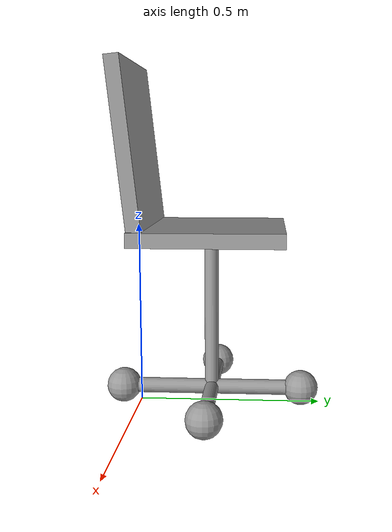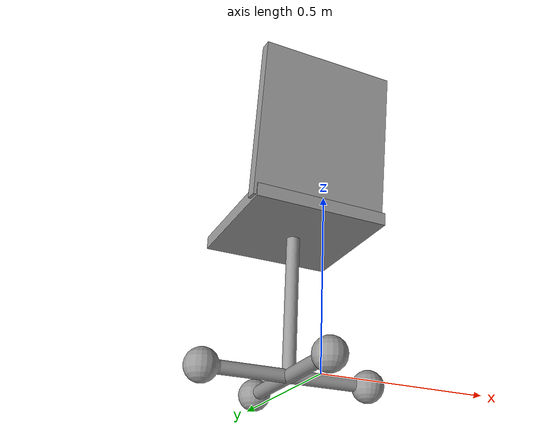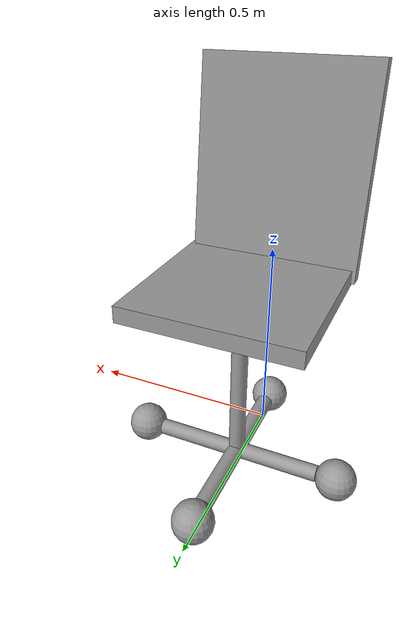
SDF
<?xml version='1.0'?>
<sdf version='1.6'>
  <model name='Sedia'>
    <link name='link'>
      <inertial>
        <mass>1</mass>
        <inertia>
          <ixx>0.1</ixx>
          <ixy>0</ixy>
          <ixz>0</ixz>
          <iyy>0.1</iyy>
          <iyz>0</iyz>
          <izz>0.1</izz>
        </inertia>
        <pose frame=''>0 -0.05 0 0 -0 0</pose>
      </inertial>
      <self_collide>0</self_collide>
      <enable_wind>0</enable_wind>
      <kinematic>0</kinematic>
      <pose frame=''>0 -0.05 0.04 0 -0 0</pose>
      <gravity>1</gravity>
      <visual name='visual'>
        <geometry>
          <sphere>
            <radius>0.0479725</radius>
          </sphere>
        </geometry>
        <material>
          <script>
            <name>Gazebo/Grey</name>
            <uri>file://media/materials/scripts/gazebo.material</uri>
          </script>
          <shader type='vertex'>
            <normal_map>__default__</normal_map>
          </shader>
          <ambient>0.3 0.3 0.3 1</ambient>
          <diffuse>0.7 0.7 0.7 1</diffuse>
          <specular>0.01 0.01 0.01 1</specular>
          <emissive>0 0 0 1</emissive>
        </material>
        <pose frame=''>0 0 0 0 -0 0</pose>
        <transparency>0</transparency>
        <cast_shadows>1</cast_shadows>
      </visual>
      <collision name='collision'>
        <laser_retro>0</laser_retro>
        <max_contacts>10</max_contacts>
        <pose frame=''>0 0 0 0 -0 0</pose>
        <geometry>
          <sphere>
            <radius>0.047973</radius>
          </sphere>
        </geometry>
        <surface>
          <friction>
            <ode>
              <mu>1</mu>
              <mu2>1</mu2>
              <fdir1>0 0 0</fdir1>
              <slip1>0</slip1>
              <slip2>0</slip2>
            </ode>
            <torsional>
              <coefficient>1</coefficient>
              <patch_radius>0</patch_radius>
              <surface_radius>0</surface_radius>
              <use_patch_radius>1</use_patch_radius>
              <ode>
                <slip>0</slip>
              </ode>
            </torsional>
          </friction>
          <bounce>
            <restitution_coefficient>0</restitution_coefficient>
            <threshold>1e+06</threshold>
          </bounce>
          <contact>
            <collide_without_contact>0</collide_without_contact>
            <collide_without_contact_bitmask>1</collide_without_contact_bitmask>
            <collide_bitmask>1</collide_bitmask>
            <ode>
              <soft_cfm>0</soft_cfm>
              <soft_erp>0.2</soft_erp>
              <kp>1e+13</kp>
              <kd>1</kd>
              <max_vel>0.01</max_vel>
              <min_depth>0</min_depth>
            </ode>
            <bullet>
              <split_impulse>1</split_impulse>
              <split_impulse_penetration_threshold>-0.01</split_impulse_penetration_threshold>
              <soft_cfm>0</soft_cfm>
              <soft_erp>0.2</soft_erp>
              <kp>1e+13</kp>
              <kd>1</kd>
            </bullet>
          </contact>
        </surface>
      </collision>
    </link>
    <link name='link_0'>
      <inertial>
        <mass>0.000595181</mass>
        <inertia>
          <ixx>8.34662e-06</ixx>
          <ixy>0</ixy>
          <ixz>0</ixz>
          <iyy>8.34662e-06</iyy>
          <iyz>0</iyz>
          <izz>1.11586e-07</izz>
        </inertia>
        <pose frame=''>0 0 0 0 -0 0</pose>
      </inertial>
      <pose frame=''>-0 0.2 0.2494 0 -0 0</pose>
      <gravity>1</gravity>
      <self_collide>0</self_collide>
      <kinematic>0</kinematic>
      <enable_wind>0</enable_wind>
      <visual name='visual'>
        <pose frame=''>0 0 0 0 -0 0</pose>
        <geometry>
          <cylinder>
            <radius>0.0193636</radius>
            <length>0.408851</length>
          </cylinder>
        </geometry>
        <material>
          <lighting>1</lighting>
          <script>
            <uri>file://media/materials/scripts/gazebo.material</uri>
            <name>Gazebo/Grey</name>
          </script>
          <shader type='vertex'>
            <normal_map>__default__</normal_map>
          </shader>
          <ambient>0.3 0.3 0.3 1</ambient>
          <diffuse>0.7 0.7 0.7 1</diffuse>
          <specular>0.01 0.01 0.01 1</specular>
          <emissive>0 0 0 1</emissive>
        </material>
        <transparency>0</transparency>
        <cast_shadows>1</cast_shadows>
      </visual>
      <collision name='collision'>
        <laser_retro>0</laser_retro>
        <max_contacts>10</max_contacts>
        <pose frame=''>0 0 0 0 -0 0</pose>
        <geometry>
          <cylinder>
            <radius>0.019364</radius>
            <length>0.408851</length>
          </cylinder>
        </geometry>
        <surface>
          <friction>
            <ode>
              <mu>1</mu>
              <mu2>1</mu2>
              <fdir1>0 0 0</fdir1>
              <slip1>0</slip1>
              <slip2>0</slip2>
            </ode>
            <torsional>
              <coefficient>1</coefficient>
              <patch_radius>0</patch_radius>
              <surface_radius>0</surface_radius>
              <use_patch_radius>1</use_patch_radius>
              <ode>
                <slip>0</slip>
              </ode>
            </torsional>
          </friction>
          <bounce>
            <restitution_coefficient>0</restitution_coefficient>
            <threshold>1e+06</threshold>
          </bounce>
          <contact>
            <collide_without_contact>0</collide_without_contact>
            <collide_without_contact_bitmask>1</collide_without_contact_bitmask>
            <collide_bitmask>1</collide_bitmask>
            <ode>
              <soft_cfm>0</soft_cfm>
              <soft_erp>0.2</soft_erp>
              <kp>1e+13</kp>
              <kd>1</kd>
              <max_vel>0.01</max_vel>
              <min_depth>0</min_depth>
            </ode>
            <bullet>
              <split_impulse>1</split_impulse>
              <split_impulse_penetration_threshold>-0.01</split_impulse_penetration_threshold>
              <soft_cfm>0</soft_cfm>
              <soft_erp>0.2</soft_erp>
              <kp>1e+13</kp>
              <kd>1</kd>
            </bullet>
          </contact>
        </surface>
      </collision>
    </link>
    <link name='link_0_clone'>
      <inertial>
        <mass>0.000698061</mass>
        <inertia>
          <ixx>1.02332e-05</ixx>
          <ixy>0</ixy>
          <ixz>0</ixz>
          <iyy>1.02332e-05</iyy>
          <iyz>0</iyz>
          <izz>1.50251e-07</izz>
        </inertia>
        <pose frame=''>0 0 0 0 -0 0</pose>
      </inertial>
      <pose frame=''>0 0.2 0.04 -1.571 -0 0</pose>
      <gravity>1</gravity>
      <self_collide>0</self_collide>
      <kinematic>0</kinematic>
      <enable_wind>0</enable_wind>
      <visual name='visual'>
        <pose frame=''>0 0 0 0 -0 0</pose>
        <geometry>
          <cylinder>
            <radius>0.0207471</radius>
            <length>0.417878</length>
          </cylinder>
        </geometry>
        <material>
          <lighting>1</lighting>
          <script>
            <uri>file://media/materials/scripts/gazebo.material</uri>
            <name>Gazebo/Grey</name>
          </script>
          <shader type='vertex'>
            <normal_map>__default__</normal_map>
          </shader>
          <ambient>0.3 0.3 0.3 1</ambient>
          <diffuse>0.7 0.7 0.7 1</diffuse>
          <specular>0.01 0.01 0.01 1</specular>
          <emissive>0 0 0 1</emissive>
        </material>
        <transparency>0</transparency>
        <cast_shadows>1</cast_shadows>
      </visual>
      <collision name='collision'>
        <laser_retro>0</laser_retro>
        <max_contacts>10</max_contacts>
        <pose frame=''>0 0 0 0 -0 0</pose>
        <geometry>
          <cylinder>
            <radius>0.020748</radius>
            <length>0.417878</length>
          </cylinder>
        </geometry>
        <surface>
          <friction>
            <ode>
              <mu>1</mu>
              <mu2>1</mu2>
              <fdir1>0 0 0</fdir1>
              <slip1>0</slip1>
              <slip2>0</slip2>
            </ode>
            <torsional>
              <coefficient>1</coefficient>
              <patch_radius>0</patch_radius>
              <surface_radius>0</surface_radius>
              <use_patch_radius>1</use_patch_radius>
              <ode>
                <slip>0</slip>
              </ode>
            </torsional>
          </friction>
          <bounce>
            <restitution_coefficient>0</restitution_coefficient>
            <threshold>1e+06</threshold>
          </bounce>
          <contact>
            <collide_without_contact>0</collide_without_contact>
            <collide_without_contact_bitmask>1</collide_without_contact_bitmask>
            <collide_bitmask>1</collide_bitmask>
            <ode>
              <soft_cfm>0</soft_cfm>
              <soft_erp>0.2</soft_erp>
              <kp>1e+13</kp>
              <kd>1</kd>
              <max_vel>0.01</max_vel>
              <min_depth>0</min_depth>
            </ode>
            <bullet>
              <split_impulse>1</split_impulse>
              <split_impulse_penetration_threshold>-0.01</split_impulse_penetration_threshold>
              <soft_cfm>0</soft_cfm>
              <soft_erp>0.2</soft_erp>
              <kp>1e+13</kp>
              <kd>1</kd>
            </bullet>
          </contact>
        </surface>
      </collision>
    </link>
    <link name='link_0_clone_0'>
      <inertial>
        <mass>0.00059327</mass>
        <inertia>
          <ixx>8.26633e-06</ixx>
          <ixy>0</ixy>
          <ixz>0</ixz>
          <iyy>8.26633e-06</iyy>
          <iyz>0</iyz>
          <izz>1.11228e-07</izz>
        </inertia>
        <pose frame=''>0 0 0 0 -0 0</pose>
      </inertial>
      <pose frame=''>0 0.2 0.04 0 -1.57059 0</pose>
      <gravity>1</gravity>
      <self_collide>0</self_collide>
      <kinematic>0</kinematic>
      <enable_wind>0</enable_wind>
      <visual name='visual'>
        <pose frame=''>0 0 0 0 -0 0</pose>
        <geometry>
          <cylinder>
            <radius>0.0193636</radius>
            <length>0.407525</length>
          </cylinder>
        </geometry>
        <material>
          <lighting>1</lighting>
          <script>
            <uri>file://media/materials/scripts/gazebo.material</uri>
            <name>Gazebo/Grey</name>
          </script>
          <shader type='vertex'>
            <normal_map>__default__</normal_map>
          </shader>
          <ambient>0.3 0.3 0.3 1</ambient>
          <diffuse>0.7 0.7 0.7 1</diffuse>
          <specular>0.01 0.01 0.01 1</specular>
          <emissive>0 0 0 1</emissive>
        </material>
        <transparency>0</transparency>
        <cast_shadows>1</cast_shadows>
      </visual>
      <collision name='collision'>
        <laser_retro>0</laser_retro>
        <max_contacts>10</max_contacts>
        <pose frame=''>0 0 0 0 -0 0</pose>
        <geometry>
          <cylinder>
            <radius>0.019364</radius>
            <length>0.407525</length>
          </cylinder>
        </geometry>
        <surface>
          <friction>
            <ode>
              <mu>1</mu>
              <mu2>1</mu2>
              <fdir1>0 0 0</fdir1>
              <slip1>0</slip1>
              <slip2>0</slip2>
            </ode>
            <torsional>
              <coefficient>1</coefficient>
              <patch_radius>0</patch_radius>
              <surface_radius>0</surface_radius>
              <use_patch_radius>1</use_patch_radius>
              <ode>
                <slip>0</slip>
              </ode>
            </torsional>
          </friction>
          <bounce>
            <restitution_coefficient>0</restitution_coefficient>
            <threshold>1e+06</threshold>
          </bounce>
          <contact>
            <collide_without_contact>0</collide_without_contact>
            <collide_without_contact_bitmask>1</collide_without_contact_bitmask>
            <collide_bitmask>1</collide_bitmask>
            <ode>
              <soft_cfm>0</soft_cfm>
              <soft_erp>0.2</soft_erp>
              <kp>1e+13</kp>
              <kd>1</kd>
              <max_vel>0.01</max_vel>
              <min_depth>0</min_depth>
            </ode>
            <bullet>
              <split_impulse>1</split_impulse>
              <split_impulse_penetration_threshold>-0.01</split_impulse_penetration_threshold>
              <soft_cfm>0</soft_cfm>
              <soft_erp>0.2</soft_erp>
              <kp>1e+13</kp>
              <kd>1</kd>
            </bullet>
          </contact>
        </surface>
      </collision>
    </link>
    <link name='link_1'>
      <inertial>
        <mass>0.00616304</mass>
        <inertia>
          <ixx>8.379e-05</ixx>
          <ixy>0</ixy>
          <ixz>0</ixz>
          <iyy>8.148e-05</iyy>
          <iyz>0</iyz>
          <izz>0.00016374</izz>
        </inertia>
        <pose frame=''>0 0 0 0 -0 0</pose>
      </inertial>
      <pose frame=''>-0 0.2 0.48 0 -0 0</pose>
      <gravity>1</gravity>
      <self_collide>0</self_collide>
      <kinematic>0</kinematic>
      <enable_wind>0</enable_wind>
      <visual name='visual'>
        <pose frame=''>0 0 0 0 -0 0</pose>
        <geometry>
          <box>
            <size>0.396445 0.402068 0.038566</size>
          </box>
        </geometry>
        <material>
          <lighting>1</lighting>
          <script>
            <uri>file://media/materials/scripts/gazebo.material</uri>
            <name>Gazebo/Grey</name>
          </script>
          <shader type='vertex'>
            <normal_map>__default__</normal_map>
          </shader>
          <ambient>0.3 0.3 0.3 1</ambient>
          <diffuse>0.7 0.7 0.7 1</diffuse>
          <specular>0.01 0.01 0.01 1</specular>
          <emissive>0 0 0 1</emissive>
        </material>
        <transparency>0</transparency>
        <cast_shadows>1</cast_shadows>
      </visual>
      <collision name='collision'>
        <laser_retro>0</laser_retro>
        <max_contacts>10</max_contacts>
        <pose frame=''>0 0 0 0 -0 0</pose>
        <geometry>
          <box>
            <size>0.396445 0.402068 0.038566</size>
          </box>
        </geometry>
        <surface>
          <friction>
            <ode>
              <mu>1</mu>
              <mu2>1</mu2>
              <fdir1>0 0 0</fdir1>
              <slip1>0</slip1>
              <slip2>0</slip2>
            </ode>
            <torsional>
              <coefficient>1</coefficient>
              <patch_radius>0</patch_radius>
              <surface_radius>0</surface_radius>
              <use_patch_radius>1</use_patch_radius>
              <ode>
                <slip>0</slip>
              </ode>
            </torsional>
          </friction>
          <bounce>
            <restitution_coefficient>0</restitution_coefficient>
            <threshold>1e+06</threshold>
          </bounce>
          <contact>
            <collide_without_contact>0</collide_without_contact>
            <collide_without_contact_bitmask>1</collide_without_contact_bitmask>
            <collide_bitmask>1</collide_bitmask>
            <ode>
              <soft_cfm>0</soft_cfm>
              <soft_erp>0.2</soft_erp>
              <kp>1e+13</kp>
              <kd>1</kd>
              <max_vel>0.01</max_vel>
              <min_depth>0</min_depth>
            </ode>
            <bullet>
              <split_impulse>1</split_impulse>
              <split_impulse_penetration_threshold>-0.01</split_impulse_penetration_threshold>
              <soft_cfm>0</soft_cfm>
              <soft_erp>0.2</soft_erp>
              <kp>1e+13</kp>
              <kd>1</kd>
            </bullet>
          </contact>
        </surface>
      </collision>
    </link>
    <link name='link_1_clone'>
      <inertial>
        <mass>0.0072018</mass>
        <inertia>
          <ixx>0.000133376</ixx>
          <ixy>0</ixy>
          <ixz>0</ixz>
          <iyy>9.52174e-05</iyy>
          <iyz>0</iyz>
          <izz>0.000226808</izz>
        </inertia>
        <pose frame=''>0 0 0 0 -0 0</pose>
      </inertial>
      <pose frame=''>-0.008803 -0.002064 0.701044 1.67698 -0 0</pose>
      <gravity>1</gravity>
      <self_collide>0</self_collide>
      <kinematic>0</kinematic>
      <enable_wind>0</enable_wind>
      <visual name='visual'>
        <pose frame=''>0 0 0 0 -0 0</pose>
        <geometry>
          <box>
            <size>0.396445 0.46984 0.038566</size>
          </box>
        </geometry>
        <material>
          <lighting>1</lighting>
          <script>
            <uri>file://media/materials/scripts/gazebo.material</uri>
            <name>Gazebo/Grey</name>
          </script>
          <shader type='vertex'>
            <normal_map>__default__</normal_map>
          </shader>
          <ambient>0.3 0.3 0.3 1</ambient>
          <diffuse>0.7 0.7 0.7 1</diffuse>
          <specular>0.01 0.01 0.01 1</specular>
          <emissive>0 0 0 1</emissive>
        </material>
        <transparency>0</transparency>
        <cast_shadows>1</cast_shadows>
      </visual>
      <collision name='collision'>
        <laser_retro>0</laser_retro>
        <max_contacts>10</max_contacts>
        <pose frame=''>0 0 0 0 -0 0</pose>
        <geometry>
          <box>
            <size>0.396445 0.46984 0.038566</size>
          </box>
        </geometry>
        <surface>
          <friction>
            <ode>
              <mu>1</mu>
              <mu2>1</mu2>
              <fdir1>0 0 0</fdir1>
              <slip1>0</slip1>
              <slip2>0</slip2>
            </ode>
            <torsional>
              <coefficient>1</coefficient>
              <patch_radius>0</patch_radius>
              <surface_radius>0</surface_radius>
              <use_patch_radius>1</use_patch_radius>
              <ode>
                <slip>0</slip>
              </ode>
            </torsional>
          </friction>
          <bounce>
            <restitution_coefficient>0</restitution_coefficient>
            <threshold>1e+06</threshold>
          </bounce>
          <contact>
            <collide_without_contact>0</collide_without_contact>
            <collide_without_contact_bitmask>1</collide_without_contact_bitmask>
            <collide_bitmask>1</collide_bitmask>
            <ode>
              <soft_cfm>0</soft_cfm>
              <soft_erp>0.2</soft_erp>
              <kp>1e+13</kp>
              <kd>1</kd>
              <max_vel>0.01</max_vel>
              <min_depth>0</min_depth>
            </ode>
            <bullet>
              <split_impulse>1</split_impulse>
              <split_impulse_penetration_threshold>-0.01</split_impulse_penetration_threshold>
              <soft_cfm>0</soft_cfm>
              <soft_erp>0.2</soft_erp>
              <kp>1e+13</kp>
              <kd>1</kd>
            </bullet>
          </contact>
        </surface>
      </collision>
    </link>
    <link name='link_clone'>
      <inertial>
        <mass>1</mass>
        <inertia>
          <ixx>0.1</ixx>
          <ixy>0</ixy>
          <ixz>0</ixz>
          <iyy>0.1</iyy>
          <iyz>0</iyz>
          <izz>0.1</izz>
        </inertia>
        <pose frame=''>0 0 0.04 0 -0 0</pose>
      </inertial>
      <self_collide>0</self_collide>
      <enable_wind>0</enable_wind>
      <kinematic>0</kinematic>
      <pose frame=''>0.25 0.2 0.04 0 -0 0</pose>
      <gravity>1</gravity>
      <visual name='visual'>
        <geometry>
          <sphere>
            <radius>0.0479725</radius>
          </sphere>
        </geometry>
        <material>
          <script>
            <name>Gazebo/Grey</name>
            <uri>file://media/materials/scripts/gazebo.material</uri>
          </script>
          <shader type='vertex'>
            <normal_map>__default__</normal_map>
          </shader>
          <ambient>0.3 0.3 0.3 1</ambient>
          <diffuse>0.7 0.7 0.7 1</diffuse>
          <specular>0.01 0.01 0.01 1</specular>
          <emissive>0 0 0 1</emissive>
        </material>
        <pose frame=''>0 0 0 0 -0 0</pose>
        <transparency>0</transparency>
        <cast_shadows>1</cast_shadows>
      </visual>
      <collision name='collision'>
        <laser_retro>0</laser_retro>
        <max_contacts>10</max_contacts>
        <pose frame=''>0 0 0 0 -0 0</pose>
        <geometry>
          <sphere>
            <radius>0.047973</radius>
          </sphere>
        </geometry>
        <surface>
          <friction>
            <ode>
              <mu>1</mu>
              <mu2>1</mu2>
              <fdir1>0 0 0</fdir1>
              <slip1>0</slip1>
              <slip2>0</slip2>
            </ode>
            <torsional>
              <coefficient>1</coefficient>
              <patch_radius>0</patch_radius>
              <surface_radius>0</surface_radius>
              <use_patch_radius>1</use_patch_radius>
              <ode>
                <slip>0</slip>
              </ode>
            </torsional>
          </friction>
          <bounce>
            <restitution_coefficient>0</restitution_coefficient>
            <threshold>1e+06</threshold>
          </bounce>
          <contact>
            <collide_without_contact>0</collide_without_contact>
            <collide_without_contact_bitmask>1</collide_without_contact_bitmask>
            <collide_bitmask>1</collide_bitmask>
            <ode>
              <soft_cfm>0</soft_cfm>
              <soft_erp>0.2</soft_erp>
              <kp>1e+13</kp>
              <kd>1</kd>
              <max_vel>0.01</max_vel>
              <min_depth>0</min_depth>
            </ode>
            <bullet>
              <split_impulse>1</split_impulse>
              <split_impulse_penetration_threshold>-0.01</split_impulse_penetration_threshold>
              <soft_cfm>0</soft_cfm>
              <soft_erp>0.2</soft_erp>
              <kp>1e+13</kp>
              <kd>1</kd>
            </bullet>
          </contact>
        </surface>
      </collision>
    </link>
    <link name='link_clone_0'>
      <inertial>
        <mass>1</mass>
        <inertia>
          <ixx>0.1</ixx>
          <ixy>0</ixy>
          <ixz>0</ixz>
          <iyy>0.1</iyy>
          <iyz>0</iyz>
          <izz>0.1</izz>
        </inertia>
        <pose frame=''>0 0 0 0 -0 0</pose>
      </inertial>
      <self_collide>0</self_collide>
      <enable_wind>0</enable_wind>
      <kinematic>0</kinematic>
      <pose frame=''>-0 0.45 0.04 0 -0 0</pose>
      <gravity>1</gravity>
      <visual name='visual'>
        <geometry>
          <sphere>
            <radius>0.0479725</radius>
          </sphere>
        </geometry>
        <material>
          <script>
            <name>Gazebo/Grey</name>
            <uri>file://media/materials/scripts/gazebo.material</uri>
          </script>
          <shader type='vertex'>
            <normal_map>__default__</normal_map>
          </shader>
          <ambient>0.3 0.3 0.3 1</ambient>
          <diffuse>0.7 0.7 0.7 1</diffuse>
          <specular>0.01 0.01 0.01 1</specular>
          <emissive>0 0 0 1</emissive>
        </material>
        <pose frame=''>0 0 0 0 -0 0</pose>
        <transparency>0</transparency>
        <cast_shadows>1</cast_shadows>
      </visual>
      <collision name='collision'>
        <laser_retro>0</laser_retro>
        <max_contacts>10</max_contacts>
        <pose frame=''>0 0 0 0 -0 0</pose>
        <geometry>
          <sphere>
            <radius>0.047973</radius>
          </sphere>
        </geometry>
        <surface>
          <friction>
            <ode>
              <mu>1</mu>
              <mu2>1</mu2>
              <fdir1>0 0 0</fdir1>
              <slip1>0</slip1>
              <slip2>0</slip2>
            </ode>
            <torsional>
              <coefficient>1</coefficient>
              <patch_radius>0</patch_radius>
              <surface_radius>0</surface_radius>
              <use_patch_radius>1</use_patch_radius>
              <ode>
                <slip>0</slip>
              </ode>
            </torsional>
          </friction>
          <bounce>
            <restitution_coefficient>0</restitution_coefficient>
            <threshold>1e+06</threshold>
          </bounce>
          <contact>
            <collide_without_contact>0</collide_without_contact>
            <collide_without_contact_bitmask>1</collide_without_contact_bitmask>
            <collide_bitmask>1</collide_bitmask>
            <ode>
              <soft_cfm>0</soft_cfm>
              <soft_erp>0.2</soft_erp>
              <kp>1e+13</kp>
              <kd>1</kd>
              <max_vel>0.01</max_vel>
              <min_depth>0</min_depth>
            </ode>
            <bullet>
              <split_impulse>1</split_impulse>
              <split_impulse_penetration_threshold>-0.01</split_impulse_penetration_threshold>
              <soft_cfm>0</soft_cfm>
              <soft_erp>0.2</soft_erp>
              <kp>1e+13</kp>
              <kd>1</kd>
            </bullet>
          </contact>
        </surface>
      </collision>
    </link>
    <link name='link_clone_1'>
      <inertial>
        <mass>1</mass>
        <inertia>
          <ixx>0.1</ixx>
          <ixy>0</ixy>
          <ixz>0</ixz>
          <iyy>0.1</iyy>
          <iyz>0</iyz>
          <izz>0.1</izz>
        </inertia>
        <pose frame=''>0 0 0 0 -0 0</pose>
      </inertial>
      <self_collide>0</self_collide>
      <enable_wind>0</enable_wind>
      <kinematic>0</kinematic>
      <pose frame=''>-0.25 0.2 0.04 0 -0 0</pose>
      <gravity>1</gravity>
      <visual name='visual'>
        <geometry>
          <sphere>
            <radius>0.0479725</radius>
          </sphere>
        </geometry>
        <material>
          <script>
            <name>Gazebo/Grey</name>
            <uri>file://media/materials/scripts/gazebo.material</uri>
          </script>
          <shader type='vertex'>
            <normal_map>__default__</normal_map>
          </shader>
          <ambient>0.3 0.3 0.3 1</ambient>
          <diffuse>0.7 0.7 0.7 1</diffuse>
          <specular>0.01 0.01 0.01 1</specular>
          <emissive>0 0 0 1</emissive>
        </material>
        <pose frame=''>0 0 0 0 -0 0</pose>
        <transparency>0</transparency>
        <cast_shadows>1</cast_shadows>
      </visual>
      <collision name='collision'>
        <laser_retro>0</laser_retro>
        <max_contacts>10</max_contacts>
        <pose frame=''>0 0 0 0 -0 0</pose>
        <geometry>
          <sphere>
            <radius>0.047973</radius>
          </sphere>
        </geometry>
        <surface>
          <friction>
            <ode>
              <mu>1</mu>
              <mu2>1</mu2>
              <fdir1>0 0 0</fdir1>
              <slip1>0</slip1>
              <slip2>0</slip2>
            </ode>
            <torsional>
              <coefficient>1</coefficient>
              <patch_radius>0</patch_radius>
              <surface_radius>0</surface_radius>
              <use_patch_radius>1</use_patch_radius>
              <ode>
                <slip>0</slip>
              </ode>
            </torsional>
          </friction>
          <bounce>
            <restitution_coefficient>0</restitution_coefficient>
            <threshold>1e+06</threshold>
          </bounce>
          <contact>
            <collide_without_contact>0</collide_without_contact>
            <collide_without_contact_bitmask>1</collide_without_contact_bitmask>
            <collide_bitmask>1</collide_bitmask>
            <ode>
              <soft_cfm>0</soft_cfm>
              <soft_erp>0.2</soft_erp>
              <kp>1e+13</kp>
              <kd>1</kd>
              <max_vel>0.01</max_vel>
              <min_depth>0</min_depth>
            </ode>
            <bullet>
              <split_impulse>1</split_impulse>
              <split_impulse_penetration_threshold>-0.01</split_impulse_penetration_threshold>
              <soft_cfm>0</soft_cfm>
              <soft_erp>0.2</soft_erp>
              <kp>1e+13</kp>
              <kd>1</kd>
            </bullet>
          </contact>
        </surface>
      </collision>
    </link>
    <joint name='link_0_clone_0_JOINT_1' type='fixed'>
      <parent>link_0_clone_0</parent>
      <child>link_clone</child>
      <pose frame=''>0 0 0 0 -0 0</pose>
      <physics>
        <ode>
          <limit>
            <cfm>0</cfm>
            <erp>0.2</erp>
          </limit>
          <suspension>
            <cfm>0</cfm>
            <erp>0.2</erp>
          </suspension>
        </ode>
      </physics>
    </joint>
    <joint name='link_0_clone_0_JOINT_2' type='fixed'>
      <parent>link_0_clone_0</parent>
      <child>link_clone_1</child>
      <pose frame=''>0 0 0 0 -0 0</pose>
      <physics>
        <ode>
          <limit>
            <cfm>0</cfm>
            <erp>0.2</erp>
          </limit>
          <suspension>
            <cfm>0</cfm>
            <erp>0.2</erp>
          </suspension>
        </ode>
      </physics>
    </joint>
    <joint name='link_0_clone_JOINT_3' type='fixed'>
      <parent>link_0_clone</parent>
      <child>link_clone_0</child>
      <pose frame=''>0 0 0 0 -0 0</pose>
      <physics>
        <ode>
          <limit>
            <cfm>0</cfm>
            <erp>0.2</erp>
          </limit>
          <suspension>
            <cfm>0</cfm>
            <erp>0.2</erp>
          </suspension>
        </ode>
      </physics>
    </joint>
    <joint name='link_0_clone_JOINT_4' type='fixed'>
      <parent>link_0_clone</parent>
      <child>link</child>
      <pose frame=''>0 0 0 0 -0 0</pose>
      <physics>
        <ode>
          <limit>
            <cfm>0</cfm>
            <erp>0.2</erp>
          </limit>
          <suspension>
            <cfm>0</cfm>
            <erp>0.2</erp>
          </suspension>
        </ode>
      </physics>
    </joint>
    <joint name='link_1_JOINT_0' type='fixed'>
      <parent>link_1</parent>
      <child>link_1_clone</child>
      <pose frame=''>0 0 0 0 -0 0</pose>
      <physics>
        <ode>
          <limit>
            <cfm>0</cfm>
            <erp>0.2</erp>
          </limit>
          <suspension>
            <cfm>0</cfm>
            <erp>0.2</erp>
          </suspension>
        </ode>
      </physics>
    </joint>
    <joint name='link_1_JOINT_4' type='fixed'>
      <parent>link_1</parent>
      <child>link_0</child>
      <pose frame=''>0 0 0 0 -0 0</pose>
      <physics>
        <ode>
          <limit>
            <cfm>0</cfm>
            <erp>0.2</erp>
          </limit>
          <suspension>
            <cfm>0</cfm>
            <erp>0.2</erp>
          </suspension>
        </ode>
      </physics>
    </joint>
    <joint name='link_JOINT_3' type='fixed'>
      <parent>link</parent>
      <child>link_0</child>
      <pose frame=''>0 0 0 0 -0 0</pose>
      <physics>
        <ode>
          <limit>
            <cfm>0</cfm>
            <erp>0.2</erp>
          </limit>
          <suspension>
            <cfm>0</cfm>
            <erp>0.2</erp>
          </suspension>
        </ode>
      </physics>
    </joint>
    <joint name='link_clone_0_JOINT_0' type='fixed'>
      <parent>link_clone_0</parent>
      <child>link_0_LINK_FRAME_VISUAL___Y_AXIS</child>
      <pose frame=''>0 0 0 0 -0 0</pose>
      <physics>
        <ode>
          <limit>
            <cfm>0</cfm>
            <erp>0.2</erp>
          </limit>
          <suspension>
            <cfm>0</cfm>
            <erp>0.2</erp>
          </suspension>
        </ode>
      </physics>
    </joint>
    <joint name='link_clone_1_JOINT_2' type='fixed'>
      <parent>link_clone_1</parent>
      <child>link_0</child>
      <pose frame=''>0 0 0 0 -0 0</pose>
      <physics>
        <ode>
          <limit>
            <cfm>0</cfm>
            <erp>0.2</erp>
          </limit>
          <suspension>
            <cfm>0</cfm>
            <erp>0.2</erp>
          </suspension>
        </ode>
      </physics>
    </joint>
    <joint name='link_clone_JOINT_1' type='fixed'>
      <parent>link_clone</parent>
      <child>link_0</child>
      <pose frame=''>0 0 0 0 -0 0</pose>
      <physics>
        <ode>
          <limit>
            <cfm>0</cfm>
            <erp>0.2</erp>
          </limit>
          <suspension>
            <cfm>0</cfm>
            <erp>0.2</erp>
          </suspension>
        </ode>
      </physics>
    </joint>
    <static>0</static>
    <allow_auto_disable>1</allow_auto_disable>
  </model>
</sdf>
